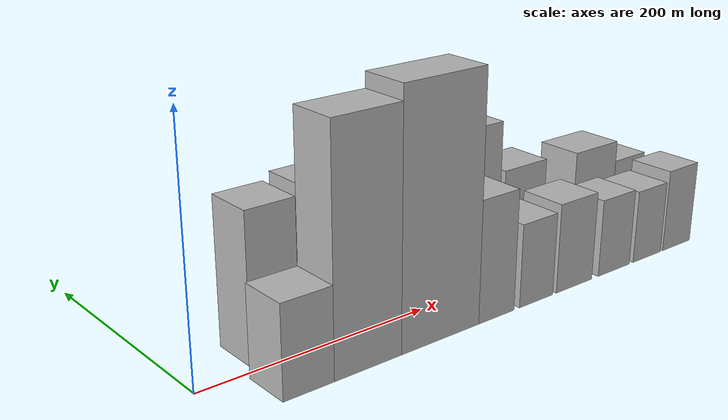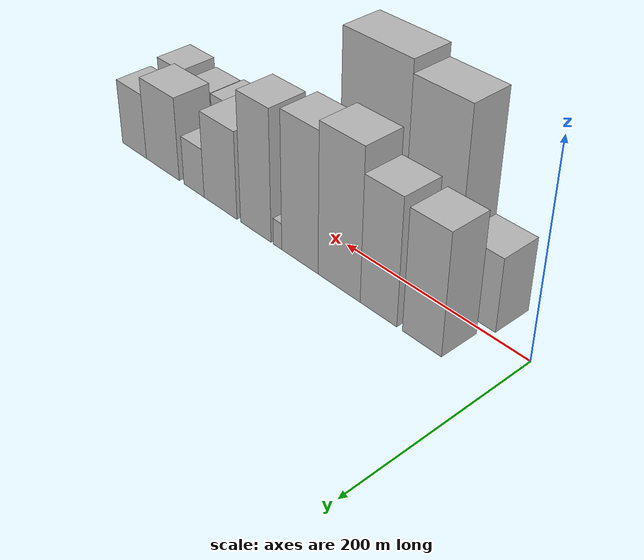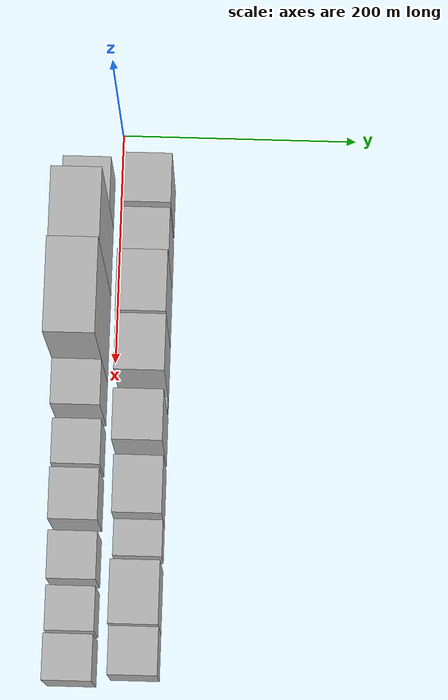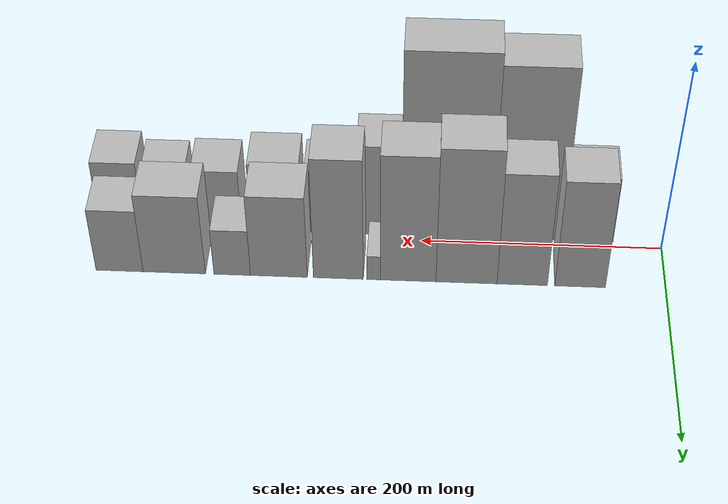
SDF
<sdf version="1.6">
 <world name="default">
  <scene>
   <sky><clouds><speed>12</speed></clouds></sky>
   <ambient>0.4 0.4 0.4 1</ambient>
   <background>0.7 0.7 0.7 1</background>
   <shadows>1</shadows>
  </scene>
  <gravity>0 0 -9.8066</gravity>
  <magnetic_field>6e-06 2.3e-05 -4.2e-05</magnetic_field>
  <physics default="0" name="default_physics" type="ode">
   <ode>
    <solver>
     <type>quick</type>
     <iters>10</iters>
     <sor>1.0</sor>
     <use_dynamic_moi_rescaling>0</use_dynamic_moi_rescaling>
    </solver>
    <constraints>
     <cfm>0</cfm>
     <erp>0.2</erp>
     <contact_max_correcting_vel>100</contact_max_correcting_vel>
     <contact_surface_layer>0.001</contact_surface_layer>
    </constraints>
   </ode>
   <max_step_size>0.004</max_step_size>
   <real_time_factor>1</real_time_factor>
   <real_time_update_rate>250</real_time_update_rate>
  </physics>
  <light name="sun" type="directional">
   <pose>0 0 10 0 0 0</pose>
   <diffuse>0.8 0.8 0.8 1</diffuse>
   <specular>0.2 0.2 0.2 1</specular>
   <attenuation>
    <range>1000</range>
    <constant>0.9</constant>
    <linear>0.01</linear>
    <quadratic>0.001</quadratic>
   </attenuation>
   <direction>-0.5 0.1 -0.9</direction>
  </light>
  <model name="building_1">
   <static>1</static>
   <pose>69.5498 26.0000 0 0.000000 0.000000 1.570796</pose>
   <link name="link">
    <pose>0 0 58.50 0 0 0</pose>
    <collision name="collision"><geometry><box><size>40.0000 41.0997 117.0000</size></box></geometry></collision>
    <visual name="visual">
     <cast_shadows>0</cast_shadows>
     <geometry><box><size>40.0000 41.0997 117.0000</size></box></geometry>
     <material>
      <script>
       <uri>model://HANNAS_wall/materials/scripts</uri>
       <uri>model://HANNAS_wall/materials/textures</uri>
       <name>vrc/HANNAS_wall</name>
      </script>
     </material>
    </visual>
   </link>
  </model>
  <model name="building_2">
   <static>1</static>
   <pose>116.6021 26.0000 0 0.000000 0.000000 1.570796</pose>
   <link name="link">
    <pose>0 0 61.50 0 0 0</pose>
    <collision name="collision"><geometry><box><size>40.0000 41.0049 123.0000</size></box></geometry></collision>
    <visual name="visual">
     <cast_shadows>0</cast_shadows>
     <geometry><box><size>40.0000 41.0049 123.0000</size></box></geometry>
     <material>
      <script>
       <uri>model://HANNAS_wall/materials/scripts</uri>
       <uri>model://HANNAS_wall/materials/textures</uri>
       <name>vrc/HANNAS_wall</name>
      </script>
     </material>
    </visual>
   </link>
  </model>
  <model name="building_3">
   <static>1</static>
   <pose>162.0072 26.0000 0 0.000000 0.000000 1.570796</pose>
   <link name="link">
    <pose>0 0 73.50 0 0 0</pose>
    <collision name="collision"><geometry><box><size>40.0000 49.8053 147.0000</size></box></geometry></collision>
    <visual name="visual">
     <cast_shadows>0</cast_shadows>
     <geometry><box><size>40.0000 49.8053 147.0000</size></box></geometry>
     <material>
      <script>
       <uri>model://HANNAS_wall/materials/scripts</uri>
       <uri>model://HANNAS_wall/materials/textures</uri>
       <name>vrc/HANNAS_wall</name>
      </script>
     </material>
    </visual>
   </link>
  </model>
  <model name="building_4">
   <static>1</static>
   <pose>209.6434 26.0000 0 0.000000 0.000000 1.570796</pose>
   <link name="link">
    <pose>0 0 69.00 0 0 0</pose>
    <collision name="collision"><geometry><box><size>40.0000 45.4671 138.0000</size></box></geometry></collision>
    <visual name="visual">
     <cast_shadows>0</cast_shadows>
     <geometry><box><size>40.0000 45.4671 138.0000</size></box></geometry>
     <material>
      <script>
       <uri>model://HANNAS_wall/materials/scripts</uri>
       <uri>model://HANNAS_wall/materials/textures</uri>
       <name>vrc/HANNAS_wall</name>
      </script>
     </material>
    </visual>
   </link>
  </model>
  <model name="building_5">
   <static>1</static>
   <pose>237.8168 26.0000 0 0.000000 0.000000 1.570796</pose>
   <link name="link">
    <pose>0 0 13.50 0 0 0</pose>
    <collision name="collision"><geometry><box><size>40.0000 10.8796 27.0000</size></box></geometry></collision>
    <visual name="visual">
     <cast_shadows>0</cast_shadows>
     <geometry><box><size>40.0000 10.8796 27.0000</size></box></geometry>
     <material>
      <script>
       <uri>model://HANNAS_wall/materials/scripts</uri>
       <uri>model://HANNAS_wall/materials/textures</uri>
       <name>vrc/HANNAS_wall</name>
      </script>
     </material>
    </visual>
   </link>
  </model>
  <model name="building_6">
   <static>1</static>
   <pose>266.7117 26.0000 0 0.000000 0.000000 1.570796</pose>
   <link name="link">
    <pose>0 0 66.00 0 0 0</pose>
    <collision name="collision"><geometry><box><size>40.0000 40.9102 132.0000</size></box></geometry></collision>
    <visual name="visual">
     <cast_shadows>0</cast_shadows>
     <geometry><box><size>40.0000 40.9102 132.0000</size></box></geometry>
     <material>
      <script>
       <uri>model://HANNAS_wall/materials/scripts</uri>
       <uri>model://HANNAS_wall/materials/textures</uri>
       <name>vrc/HANNAS_wall</name>
      </script>
     </material>
    </visual>
   </link>
  </model>
  <model name="building_7">
   <static>1</static>
   <pose>315.5100 26.0000 0 0.000000 0.000000 1.570796</pose>
   <link name="link">
    <pose>0 0 45.00 0 0 0</pose>
    <collision name="collision"><geometry><box><size>40.0000 46.6864 90.0000</size></box></geometry></collision>
    <visual name="visual">
     <cast_shadows>0</cast_shadows>
     <geometry><box><size>40.0000 46.6864 90.0000</size></box></geometry>
     <material>
      <script>
       <uri>model://HANNAS_wall/materials/scripts</uri>
       <uri>model://HANNAS_wall/materials/textures</uri>
       <name>vrc/HANNAS_wall</name>
      </script>
     </material>
    </visual>
   </link>
  </model>
  <model name="building_8">
   <static>1</static>
   <pose>353.8783 26.0000 0 0.000000 0.000000 1.570796</pose>
   <link name="link">
    <pose>0 0 25.50 0 0 0</pose>
    <collision name="collision"><geometry><box><size>40.0000 30.0503 51.0000</size></box></geometry></collision>
    <visual name="visual">
     <cast_shadows>0</cast_shadows>
     <geometry><box><size>40.0000 30.0503 51.0000</size></box></geometry>
     <material>
      <script>
       <uri>model://HANNAS_wall/materials/scripts</uri>
       <uri>model://HANNAS_wall/materials/textures</uri>
       <name>vrc/HANNAS_wall</name>
      </script>
     </material>
    </visual>
   </link>
  </model>
  <model name="building_9">
   <static>1</static>
   <pose>401.5745 26.0000 0 0.000000 0.000000 1.570796</pose>
   <link name="link">
    <pose>0 0 43.50 0 0 0</pose>
    <collision name="collision"><geometry><box><size>40.0000 51.3420 87.0000</size></box></geometry></collision>
    <visual name="visual">
     <cast_shadows>0</cast_shadows>
     <geometry><box><size>40.0000 51.3420 87.0000</size></box></geometry>
     <material>
      <script>
       <uri>model://HANNAS_wall/materials/scripts</uri>
       <uri>model://HANNAS_wall/materials/textures</uri>
       <name>vrc/HANNAS_wall</name>
      </script>
     </material>
    </visual>
   </link>
  </model>
  <model name="building_10">
   <static>1</static>
   <pose>446.7291 26.0000 0 0.000000 0.000000 1.570796</pose>
   <link name="link">
    <pose>0 0 34.50 0 0 0</pose>
    <collision name="collision"><geometry><box><size>40.0000 38.9672 69.0000</size></box></geometry></collision>
    <visual name="visual">
     <cast_shadows>0</cast_shadows>
     <geometry><box><size>40.0000 38.9672 69.0000</size></box></geometry>
     <material>
      <script>
       <uri>model://HANNAS_wall/materials/scripts</uri>
       <uri>model://HANNAS_wall/materials/textures</uri>
       <name>vrc/HANNAS_wall</name>
      </script>
     </material>
    </visual>
   </link>
  </model>
  <model name="building_11">
   <static>1</static>
   <pose>61.0648 -26.0000 0 0.000000 0.000000 1.570796</pose>
   <link name="link">
    <pose>0 0 36.00 0 0 0</pose>
    <collision name="collision"><geometry><box><size>40.0000 42.1297 72.0000</size></box></geometry></collision>
    <visual name="visual">
     <cast_shadows>0</cast_shadows>
     <geometry><box><size>40.0000 42.1297 72.0000</size></box></geometry>
     <material>
      <script>
       <uri>model://HANNAS_wall/materials/scripts</uri>
       <uri>model://HANNAS_wall/materials/textures</uri>
       <name>vrc/HANNAS_wall</name>
      </script>
     </material>
    </visual>
   </link>
  </model>
  <model name="building_12">
   <static>1</static>
   <pose>111.7779 -26.0000 0 0.000000 0.000000 1.570796</pose>
   <link name="link">
    <pose>0 0 93.00 0 0 0</pose>
    <collision name="collision"><geometry><box><size>40.0000 59.2964 186.0000</size></box></geometry></collision>
    <visual name="visual">
     <cast_shadows>0</cast_shadows>
     <geometry><box><size>40.0000 59.2964 186.0000</size></box></geometry>
     <material>
      <script>
       <uri>model://HANNAS_wall/materials/scripts</uri>
       <uri>model://HANNAS_wall/materials/textures</uri>
       <name>vrc/HANNAS_wall</name>
      </script>
     </material>
    </visual>
   </link>
  </model>
  <model name="building_13">
   <static>1</static>
   <pose>179.1467 -26.0000 0 0.000000 0.000000 1.570796</pose>
   <link name="link">
    <pose>0 0 99.00 0 0 0</pose>
    <collision name="collision"><geometry><box><size>40.0000 75.4413 198.0000</size></box></geometry></collision>
    <visual name="visual">
     <cast_shadows>0</cast_shadows>
     <geometry><box><size>40.0000 75.4413 198.0000</size></box></geometry>
     <material>
      <script>
       <uri>model://HANNAS_wall/materials/scripts</uri>
       <uri>model://HANNAS_wall/materials/textures</uri>
       <name>vrc/HANNAS_wall</name>
      </script>
     </material>
    </visual>
   </link>
  </model>
  <model name="building_14">
   <static>1</static>
   <pose>235.4819 -26.0000 0 0.000000 0.000000 1.570796</pose>
   <link name="link">
    <pose>0 0 49.50 0 0 0</pose>
    <collision name="collision"><geometry><box><size>40.0000 37.2291 99.0000</size></box></geometry></collision>
    <visual name="visual">
     <cast_shadows>0</cast_shadows>
     <geometry><box><size>40.0000 37.2291 99.0000</size></box></geometry>
     <material>
      <script>
       <uri>model://HANNAS_wall/materials/scripts</uri>
       <uri>model://HANNAS_wall/materials/textures</uri>
       <name>vrc/HANNAS_wall</name>
      </script>
     </material>
    </visual>
   </link>
  </model>
  <model name="building_15">
   <static>1</static>
   <pose>278.7319 -26.0000 0 0.000000 0.000000 1.570796</pose>
   <link name="link">
    <pose>0 0 34.50 0 0 0</pose>
    <collision name="collision"><geometry><box><size>40.0000 37.2709 69.0000</size></box></geometry></collision>
    <visual name="visual">
     <cast_shadows>0</cast_shadows>
     <geometry><box><size>40.0000 37.2709 69.0000</size></box></geometry>
     <material>
      <script>
       <uri>model://HANNAS_wall/materials/scripts</uri>
       <uri>model://HANNAS_wall/materials/textures</uri>
       <name>vrc/HANNAS_wall</name>
      </script>
     </material>
    </visual>
   </link>
  </model>
  <model name="building_16">
   <static>1</static>
   <pose>322.4038 -26.0000 0 0.000000 0.000000 1.570796</pose>
   <link name="link">
    <pose>0 0 37.50 0 0 0</pose>
    <collision name="collision"><geometry><box><size>40.0000 42.0729 75.0000</size></box></geometry></collision>
    <visual name="visual">
     <cast_shadows>0</cast_shadows>
     <geometry><box><size>40.0000 42.0729 75.0000</size></box></geometry>
     <material>
      <script>
       <uri>model://HANNAS_wall/materials/scripts</uri>
       <uri>model://HANNAS_wall/materials/textures</uri>
       <name>vrc/HANNAS_wall</name>
      </script>
     </material>
    </visual>
   </link>
  </model>
  <model name="building_17">
   <static>1</static>
   <pose>370.9581 -26.0000 0 0.000000 0.000000 1.570796</pose>
   <link name="link">
    <pose>0 0 33.00 0 0 0</pose>
    <collision name="collision"><geometry><box><size>40.0000 39.0358 66.0000</size></box></geometry></collision>
    <visual name="visual">
     <cast_shadows>0</cast_shadows>
     <geometry><box><size>40.0000 39.0358 66.0000</size></box></geometry>
     <material>
      <script>
       <uri>model://HANNAS_wall/materials/scripts</uri>
       <uri>model://HANNAS_wall/materials/textures</uri>
       <name>vrc/HANNAS_wall</name>
      </script>
     </material>
    </visual>
   </link>
  </model>
  <model name="building_18">
   <static>1</static>
   <pose>413.6311 -26.0000 0 0.000000 0.000000 1.570796</pose>
   <link name="link">
    <pose>0 0 31.50 0 0 0</pose>
    <collision name="collision"><geometry><box><size>40.0000 36.3102 63.0000</size></box></geometry></collision>
    <visual name="visual">
     <cast_shadows>0</cast_shadows>
     <geometry><box><size>40.0000 36.3102 63.0000</size></box></geometry>
     <material>
      <script>
       <uri>model://HANNAS_wall/materials/scripts</uri>
       <uri>model://HANNAS_wall/materials/textures</uri>
       <name>vrc/HANNAS_wall</name>
      </script>
     </material>
    </visual>
   </link>
  </model>
  <model name="building_19">
   <static>1</static>
   <pose>453.4591 -26.0000 0 0.000000 0.000000 1.570796</pose>
   <link name="link">
    <pose>0 0 36.00 0 0 0</pose>
    <collision name="collision"><geometry><box><size>40.0000 37.3458 72.0000</size></box></geometry></collision>
    <visual name="visual">
     <cast_shadows>0</cast_shadows>
     <geometry><box><size>40.0000 37.3458 72.0000</size></box></geometry>
     <material>
      <script>
       <uri>model://HANNAS_wall/materials/scripts</uri>
       <uri>model://HANNAS_wall/materials/textures</uri>
       <name>vrc/HANNAS_wall</name>
      </script>
     </material>
    </visual>
   </link>
  </model>
 </world>
</sdf>
